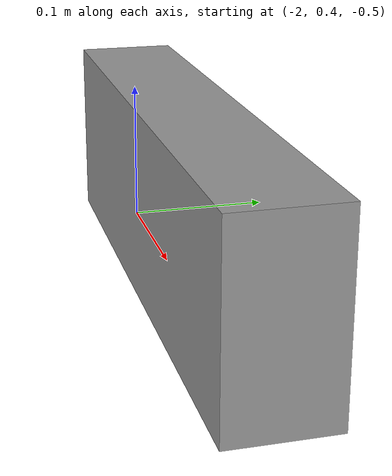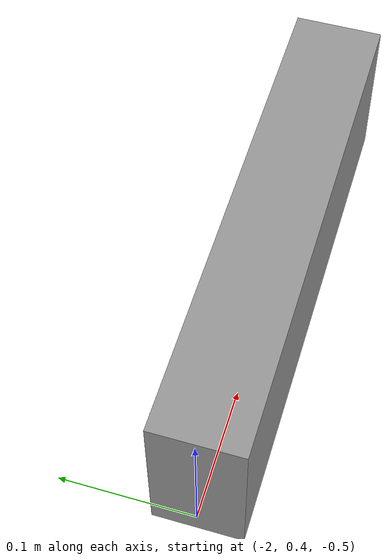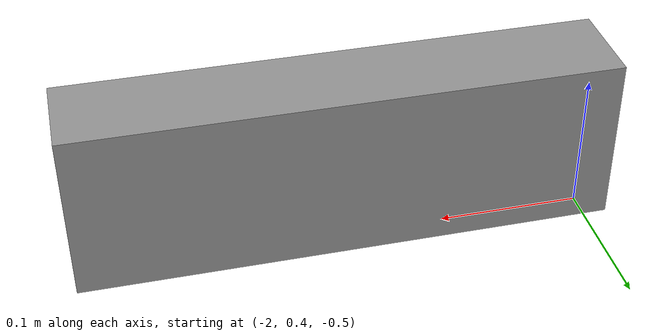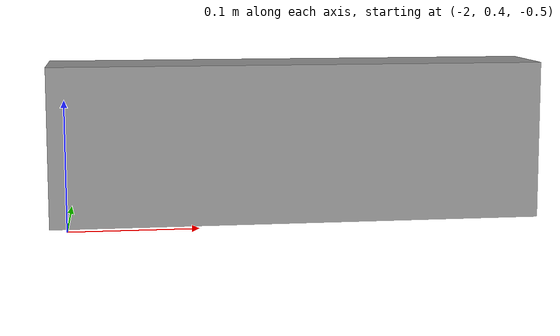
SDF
<?xml version='1.0'?>
<sdf version='1.6'>
  <model name='mala_przeszkoda'>
    <link name='link'>
      <pose frame=''>-1.82726 0.396027 -0.431183 0 -0 0</pose>
      <inertial>
        <mass>0.00279896</mass>
        <inertia>
          <ixx>4.23393e-06</ixx>
          <ixy>0</ixy>
          <ixz>0</ixz>
          <iyy>3.48018e-05</iyy>
          <iyz>0</iyz>
          <izz>3.24963e-05</izz>
        </inertia>
        <pose frame=''>0 0 0 0 -0 0</pose>
      </inertial>
      <self_collide>0</self_collide>
      <kinematic>0</kinematic>
      <visual name='visual'>
        <geometry>
          <box>
            <size>0.367677 0.064291 0.118397</size>
          </box>
        </geometry>
        <material>
          <script>
            <name>Gazebo/Grey</name>
            <uri>file://media/materials/scripts/gazebo.material</uri>
          </script>
          <ambient>0.3 0.3 0.3 1</ambient>
          <diffuse>0.7 0.7 0.7 1</diffuse>
          <specular>0.01 0.01 0.01 1</specular>
          <emissive>0 0 0 1</emissive>
        </material>
        <pose frame=''>0 0 0 0 -0 0</pose>
        <cast_shadows>1</cast_shadows>
        <transparency>0</transparency>
      </visual>
      <collision name='collision'>
        <laser_retro>0</laser_retro>
        <max_contacts>10</max_contacts>
        <pose frame=''>0 0 0 0 -0 0</pose>
        <geometry>
          <box>
            <size>0.367677 0.064291 0.118397</size>
          </box>
        </geometry>
        <surface>
          <friction>
            <ode>
              <mu>1</mu>
              <mu2>1</mu2>
              <fdir1>0 0 0</fdir1>
              <slip1>0</slip1>
              <slip2>0</slip2>
            </ode>
            <torsional>
              <coefficient>1</coefficient>
              <patch_radius>0</patch_radius>
              <surface_radius>0</surface_radius>
              <use_patch_radius>1</use_patch_radius>
              <ode>
                <slip>0</slip>
              </ode>
            </torsional>
          </friction>
          <bounce>
            <restitution_coefficient>0</restitution_coefficient>
            <threshold>1e+06</threshold>
          </bounce>
          <contact>
            <collide_without_contact>0</collide_without_contact>
            <collide_without_contact_bitmask>1</collide_without_contact_bitmask>
            <collide_bitmask>1</collide_bitmask>
            <ode>
              <soft_cfm>0</soft_cfm>
              <soft_erp>0.2</soft_erp>
              <kp>1e+13</kp>
              <kd>1</kd>
              <max_vel>0.01</max_vel>
              <min_depth>0</min_depth>
            </ode>
            <bullet>
              <split_impulse>1</split_impulse>
              <split_impulse_penetration_threshold>-0.01</split_impulse_penetration_threshold>
              <soft_cfm>0</soft_cfm>
              <soft_erp>0.2</soft_erp>
              <kp>1e+13</kp>
              <kd>1</kd>
            </bullet>
          </contact>
        </surface>
      </collision>
    </link>
    <static>0</static>
    <allow_auto_disable>1</allow_auto_disable>
  </model>
</sdf>
